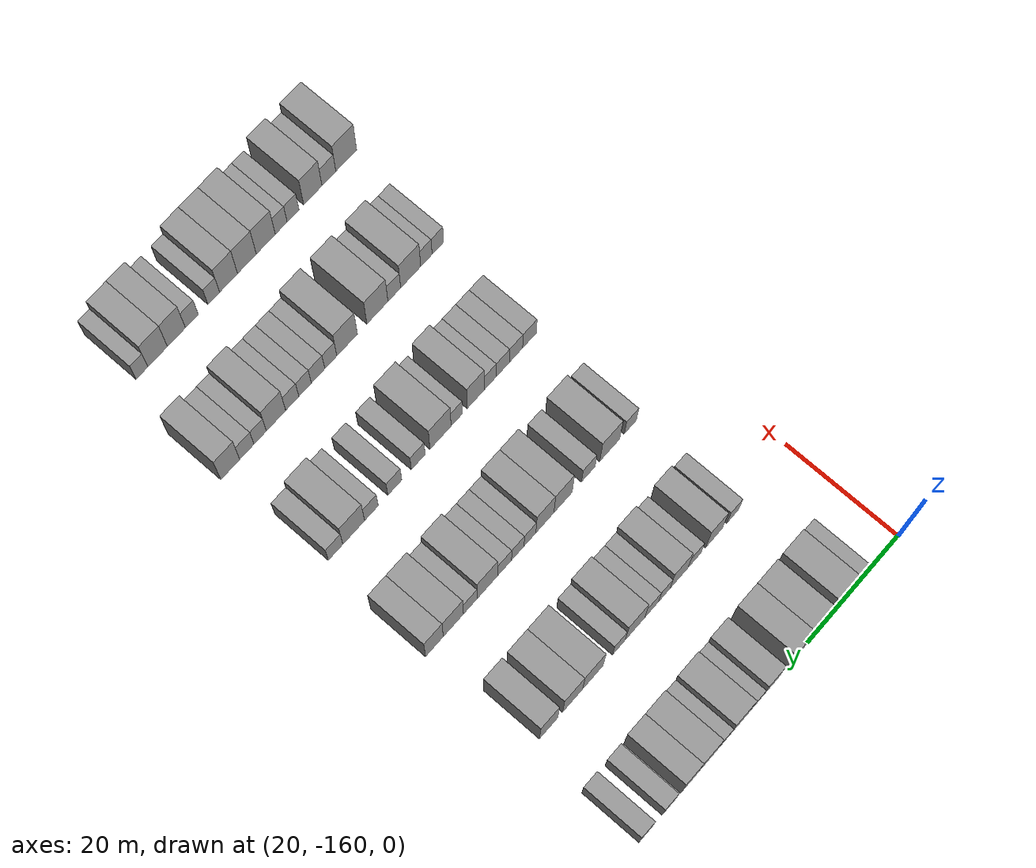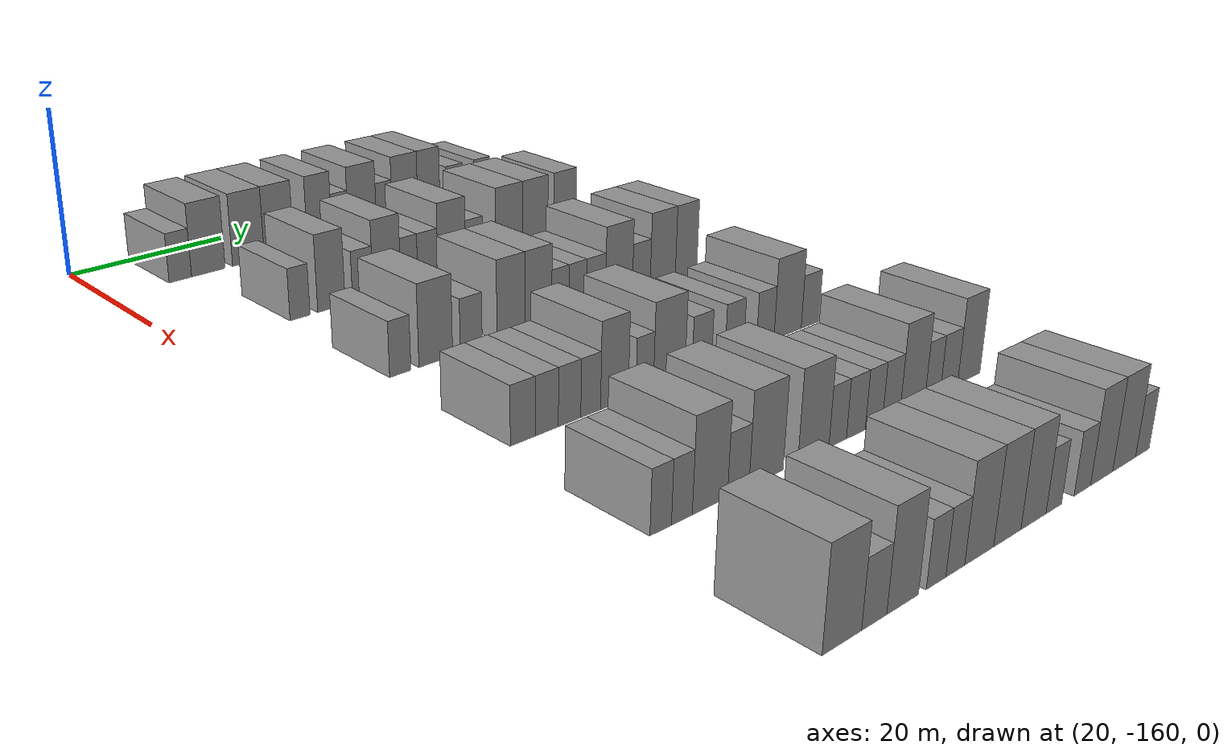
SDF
<sdf version="1.6">
 <world name="default">
  <model name="building_50">
   <static>1</static>
   <pose>25.0000 -151.0705 0 0.000000 0.000000 0.000000</pose>
   <link name="link">
    <pose>0 0 3.00 0 0 0</pose>
    <collision name="collision"><geometry><box><size>10.0000 2.8996 6.0000</size></box></geometry></collision>
    <visual name="visual">
     <cast_shadows>0</cast_shadows>
     <geometry><box><size>10.0000 2.8996 6.0000</size></box></geometry>
     <material>
      <script>
       <uri>model://grey_wall/materials/scripts</uri>
       <uri>model://grey_wall/materials/textures</uri>
       <name>vrc/grey_wall</name>
      </script>
     </material>
    </visual>
   </link>
  </model>
  <model name="building_51">
   <static>1</static>
   <pose>25.0000 -147.3986 0 0.000000 0.000000 0.000000</pose>
   <link name="link">
    <pose>0 0 4.50 0 0 0</pose>
    <collision name="collision"><geometry><box><size>10.0000 4.4442 9.0000</size></box></geometry></collision>
    <visual name="visual">
     <cast_shadows>0</cast_shadows>
     <geometry><box><size>10.0000 4.4442 9.0000</size></box></geometry>
     <material>
      <script>
       <uri>model://grey_wall/materials/scripts</uri>
       <uri>model://grey_wall/materials/textures</uri>
       <name>vrc/grey_wall</name>
      </script>
     </material>
    </visual>
   </link>
  </model>
  <model name="building_52">
   <static>1</static>
   <pose>25.0000 -141.9853 0 0.000000 0.000000 0.000000</pose>
   <link name="link">
    <pose>0 0 4.50 0 0 0</pose>
    <collision name="collision"><geometry><box><size>10.0000 4.3824 9.0000</size></box></geometry></collision>
    <visual name="visual">
     <cast_shadows>0</cast_shadows>
     <geometry><box><size>10.0000 4.3824 9.0000</size></box></geometry>
     <material>
      <script>
       <uri>model://grey_wall/materials/scripts</uri>
       <uri>model://grey_wall/materials/textures</uri>
       <name>vrc/grey_wall</name>
      </script>
     </material>
    </visual>
   </link>
  </model>
  <model name="building_53">
   <static>1</static>
   <pose>25.0000 -137.7094 0 0.000000 0.000000 0.000000</pose>
   <link name="link">
    <pose>0 0 4.50 0 0 0</pose>
    <collision name="collision"><geometry><box><size>10.0000 4.1693 9.0000</size></box></geometry></collision>
    <visual name="visual">
     <cast_shadows>0</cast_shadows>
     <geometry><box><size>10.0000 4.1693 9.0000</size></box></geometry>
     <material>
      <script>
       <uri>model://grey_wall/materials/scripts</uri>
       <uri>model://grey_wall/materials/textures</uri>
       <name>vrc/grey_wall</name>
      </script>
     </material>
    </visual>
   </link>
  </model>
  <model name="building_54">
   <static>1</static>
   <pose>25.0000 -131.8078 0 0.000000 0.000000 0.000000</pose>
   <link name="link">
    <pose>0 0 4.50 0 0 0</pose>
    <collision name="collision"><geometry><box><size>10.0000 3.6338 9.0000</size></box></geometry></collision>
    <visual name="visual">
     <cast_shadows>0</cast_shadows>
     <geometry><box><size>10.0000 3.6338 9.0000</size></box></geometry>
     <material>
      <script>
       <uri>model://grey_wall/materials/scripts</uri>
       <uri>model://grey_wall/materials/textures</uri>
       <name>vrc/grey_wall</name>
      </script>
     </material>
    </visual>
   </link>
  </model>
  <model name="building_55">
   <static>1</static>
   <pose>25.0000 -128.7550 0 0.000000 0.000000 0.000000</pose>
   <link name="link">
    <pose>0 0 3.00 0 0 0</pose>
    <collision name="collision"><geometry><box><size>10.0000 2.4718 6.0000</size></box></geometry></collision>
    <visual name="visual">
     <cast_shadows>0</cast_shadows>
     <geometry><box><size>10.0000 2.4718 6.0000</size></box></geometry>
     <material>
      <script>
       <uri>model://grey_wall/materials/scripts</uri>
       <uri>model://grey_wall/materials/textures</uri>
       <name>vrc/grey_wall</name>
      </script>
     </material>
    </visual>
   </link>
  </model>
  <model name="building_56">
   <static>1</static>
   <pose>25.0000 -125.3522 0 0.000000 0.000000 0.000000</pose>
   <link name="link">
    <pose>0 0 4.50 0 0 0</pose>
    <collision name="collision"><geometry><box><size>10.0000 4.3337 9.0000</size></box></geometry></collision>
    <visual name="visual">
     <cast_shadows>0</cast_shadows>
     <geometry><box><size>10.0000 4.3337 9.0000</size></box></geometry>
     <material>
      <script>
       <uri>model://grey_wall/materials/scripts</uri>
       <uri>model://grey_wall/materials/textures</uri>
       <name>vrc/grey_wall</name>
      </script>
     </material>
    </visual>
   </link>
  </model>
  <model name="building_57">
   <static>1</static>
   <pose>25.0000 -121.9350 0 0.000000 0.000000 0.000000</pose>
   <link name="link">
    <pose>0 0 3.00 0 0 0</pose>
    <collision name="collision"><geometry><box><size>10.0000 2.5006 6.0000</size></box></geometry></collision>
    <visual name="visual">
     <cast_shadows>0</cast_shadows>
     <geometry><box><size>10.0000 2.5006 6.0000</size></box></geometry>
     <material>
      <script>
       <uri>model://grey_wall/materials/scripts</uri>
       <uri>model://grey_wall/materials/textures</uri>
       <name>vrc/grey_wall</name>
      </script>
     </material>
    </visual>
   </link>
  </model>
  <model name="building_58">
   <static>1</static>
   <pose>25.0000 -118.6194 0 0.000000 0.000000 0.000000</pose>
   <link name="link">
    <pose>0 0 4.50 0 0 0</pose>
    <collision name="collision"><geometry><box><size>10.0000 4.1307 9.0000</size></box></geometry></collision>
    <visual name="visual">
     <cast_shadows>0</cast_shadows>
     <geometry><box><size>10.0000 4.1307 9.0000</size></box></geometry>
     <material>
      <script>
       <uri>model://grey_wall/materials/scripts</uri>
       <uri>model://grey_wall/materials/textures</uri>
       <name>vrc/grey_wall</name>
      </script>
     </material>
    </visual>
   </link>
  </model>
  <model name="building_59">
   <static>1</static>
   <pose>25.0000 -114.7316 0 0.000000 0.000000 0.000000</pose>
   <link name="link">
    <pose>0 0 4.50 0 0 0</pose>
    <collision name="collision"><geometry><box><size>10.0000 3.6450 9.0000</size></box></geometry></collision>
    <visual name="visual">
     <cast_shadows>0</cast_shadows>
     <geometry><box><size>10.0000 3.6450 9.0000</size></box></geometry>
     <material>
      <script>
       <uri>model://grey_wall/materials/scripts</uri>
       <uri>model://grey_wall/materials/textures</uri>
       <name>vrc/grey_wall</name>
      </script>
     </material>
    </visual>
   </link>
  </model>
  <model name="building_60">
   <static>1</static>
   <pose>25.0000 -110.4833 0 0.000000 0.000000 0.000000</pose>
   <link name="link">
    <pose>0 0 3.00 0 0 0</pose>
    <collision name="collision"><geometry><box><size>10.0000 2.8515 6.0000</size></box></geometry></collision>
    <visual name="visual">
     <cast_shadows>0</cast_shadows>
     <geometry><box><size>10.0000 2.8515 6.0000</size></box></geometry>
     <material>
      <script>
       <uri>model://grey_wall/materials/scripts</uri>
       <uri>model://grey_wall/materials/textures</uri>
       <name>vrc/grey_wall</name>
      </script>
     </material>
    </visual>
   </link>
  </model>
  <model name="building_61">
   <static>1</static>
   <pose>25.0000 -105.6531 0 0.000000 0.000000 0.000000</pose>
   <link name="link">
    <pose>0 0 3.00 0 0 0</pose>
    <collision name="collision"><geometry><box><size>10.0000 2.8089 6.0000</size></box></geometry></collision>
    <visual name="visual">
     <cast_shadows>0</cast_shadows>
     <geometry><box><size>10.0000 2.8089 6.0000</size></box></geometry>
     <material>
      <script>
       <uri>model://grey_wall/materials/scripts</uri>
       <uri>model://grey_wall/materials/textures</uri>
       <name>vrc/grey_wall</name>
      </script>
     </material>
    </visual>
   </link>
  </model>
  <model name="building_226">
   <static>1</static>
   <pose>44.0000 -146.9667 0 0.000000 0.000000 0.000000</pose>
   <link name="link">
    <pose>0 0 3.00 0 0 0</pose>
    <collision name="collision"><geometry><box><size>10.0000 2.5577 6.0000</size></box></geometry></collision>
    <visual name="visual">
     <cast_shadows>0</cast_shadows>
     <geometry><box><size>10.0000 2.5577 6.0000</size></box></geometry>
     <material>
      <script>
       <uri>model://grey_wall/materials/scripts</uri>
       <uri>model://grey_wall/materials/textures</uri>
       <name>vrc/grey_wall</name>
      </script>
     </material>
    </visual>
   </link>
  </model>
  <model name="building_227">
   <static>1</static>
   <pose>44.0000 -142.8786 0 0.000000 0.000000 0.000000</pose>
   <link name="link">
    <pose>0 0 4.50 0 0 0</pose>
    <collision name="collision"><geometry><box><size>10.0000 3.6185 9.0000</size></box></geometry></collision>
    <visual name="visual">
     <cast_shadows>0</cast_shadows>
     <geometry><box><size>10.0000 3.6185 9.0000</size></box></geometry>
     <material>
      <script>
       <uri>model://grey_wall/materials/scripts</uri>
       <uri>model://grey_wall/materials/textures</uri>
       <name>vrc/grey_wall</name>
      </script>
     </material>
    </visual>
   </link>
  </model>
  <model name="building_228">
   <static>1</static>
   <pose>44.0000 -138.6681 0 0.000000 0.000000 0.000000</pose>
   <link name="link">
    <pose>0 0 3.00 0 0 0</pose>
    <collision name="collision"><geometry><box><size>10.0000 2.8025 6.0000</size></box></geometry></collision>
    <visual name="visual">
     <cast_shadows>0</cast_shadows>
     <geometry><box><size>10.0000 2.8025 6.0000</size></box></geometry>
     <material>
      <script>
       <uri>model://grey_wall/materials/scripts</uri>
       <uri>model://grey_wall/materials/textures</uri>
       <name>vrc/grey_wall</name>
      </script>
     </material>
    </visual>
   </link>
  </model>
  <model name="building_229">
   <static>1</static>
   <pose>44.0000 -135.3295 0 0.000000 0.000000 0.000000</pose>
   <link name="link">
    <pose>0 0 4.50 0 0 0</pose>
    <collision name="collision"><geometry><box><size>10.0000 3.8747 9.0000</size></box></geometry></collision>
    <visual name="visual">
     <cast_shadows>0</cast_shadows>
     <geometry><box><size>10.0000 3.8747 9.0000</size></box></geometry>
     <material>
      <script>
       <uri>model://grey_wall/materials/scripts</uri>
       <uri>model://grey_wall/materials/textures</uri>
       <name>vrc/grey_wall</name>
      </script>
     </material>
    </visual>
   </link>
  </model>
  <model name="building_230">
   <static>1</static>
   <pose>44.0000 -132.1748 0 0.000000 0.000000 0.000000</pose>
   <link name="link">
    <pose>0 0 3.00 0 0 0</pose>
    <collision name="collision"><geometry><box><size>10.0000 2.4348 6.0000</size></box></geometry></collision>
    <visual name="visual">
     <cast_shadows>0</cast_shadows>
     <geometry><box><size>10.0000 2.4348 6.0000</size></box></geometry>
     <material>
      <script>
       <uri>model://grey_wall/materials/scripts</uri>
       <uri>model://grey_wall/materials/textures</uri>
       <name>vrc/grey_wall</name>
      </script>
     </material>
    </visual>
   </link>
  </model>
  <model name="building_231">
   <static>1</static>
   <pose>44.0000 -129.4868 0 0.000000 0.000000 0.000000</pose>
   <link name="link">
    <pose>0 0 3.00 0 0 0</pose>
    <collision name="collision"><geometry><box><size>10.0000 2.9411 6.0000</size></box></geometry></collision>
    <visual name="visual">
     <cast_shadows>0</cast_shadows>
     <geometry><box><size>10.0000 2.9411 6.0000</size></box></geometry>
     <material>
      <script>
       <uri>model://grey_wall/materials/scripts</uri>
       <uri>model://grey_wall/materials/textures</uri>
       <name>vrc/grey_wall</name>
      </script>
     </material>
    </visual>
   </link>
  </model>
  <model name="building_232">
   <static>1</static>
   <pose>44.0000 -125.9477 0 0.000000 0.000000 0.000000</pose>
   <link name="link">
    <pose>0 0 4.50 0 0 0</pose>
    <collision name="collision"><geometry><box><size>10.0000 4.1373 9.0000</size></box></geometry></collision>
    <visual name="visual">
     <cast_shadows>0</cast_shadows>
     <geometry><box><size>10.0000 4.1373 9.0000</size></box></geometry>
     <material>
      <script>
       <uri>model://grey_wall/materials/scripts</uri>
       <uri>model://grey_wall/materials/textures</uri>
       <name>vrc/grey_wall</name>
      </script>
     </material>
    </visual>
   </link>
  </model>
  <model name="building_233">
   <static>1</static>
   <pose>44.0000 -122.5496 0 0.000000 0.000000 0.000000</pose>
   <link name="link">
    <pose>0 0 3.00 0 0 0</pose>
    <collision name="collision"><geometry><box><size>10.0000 2.6588 6.0000</size></box></geometry></collision>
    <visual name="visual">
     <cast_shadows>0</cast_shadows>
     <geometry><box><size>10.0000 2.6588 6.0000</size></box></geometry>
     <material>
      <script>
       <uri>model://grey_wall/materials/scripts</uri>
       <uri>model://grey_wall/materials/textures</uri>
       <name>vrc/grey_wall</name>
      </script>
     </material>
    </visual>
   </link>
  </model>
  <model name="building_234">
   <static>1</static>
   <pose>44.0000 -117.0620 0 0.000000 0.000000 0.000000</pose>
   <link name="link">
    <pose>0 0 4.50 0 0 0</pose>
    <collision name="collision"><geometry><box><size>10.0000 4.3165 9.0000</size></box></geometry></collision>
    <visual name="visual">
     <cast_shadows>0</cast_shadows>
     <geometry><box><size>10.0000 4.3165 9.0000</size></box></geometry>
     <material>
      <script>
       <uri>model://grey_wall/materials/scripts</uri>
       <uri>model://grey_wall/materials/textures</uri>
       <name>vrc/grey_wall</name>
      </script>
     </material>
    </visual>
   </link>
  </model>
  <model name="building_235">
   <static>1</static>
   <pose>44.0000 -112.8462 0 0.000000 0.000000 0.000000</pose>
   <link name="link">
    <pose>0 0 4.50 0 0 0</pose>
    <collision name="collision"><geometry><box><size>10.0000 4.1151 9.0000</size></box></geometry></collision>
    <visual name="visual">
     <cast_shadows>0</cast_shadows>
     <geometry><box><size>10.0000 4.1151 9.0000</size></box></geometry>
     <material>
      <script>
       <uri>model://grey_wall/materials/scripts</uri>
       <uri>model://grey_wall/materials/textures</uri>
       <name>vrc/grey_wall</name>
      </script>
     </material>
    </visual>
   </link>
  </model>
  <model name="building_236">
   <static>1</static>
   <pose>44.0000 -107.8973 0 0.000000 0.000000 0.000000</pose>
   <link name="link">
    <pose>0 0 4.50 0 0 0</pose>
    <collision name="collision"><geometry><box><size>10.0000 3.7828 9.0000</size></box></geometry></collision>
    <visual name="visual">
     <cast_shadows>0</cast_shadows>
     <geometry><box><size>10.0000 3.7828 9.0000</size></box></geometry>
     <material>
      <script>
       <uri>model://grey_wall/materials/scripts</uri>
       <uri>model://grey_wall/materials/textures</uri>
       <name>vrc/grey_wall</name>
      </script>
     </material>
    </visual>
   </link>
  </model>
  <model name="building_402">
   <static>1</static>
   <pose>63.0000 -147.5192 0 0.000000 0.000000 0.000000</pose>
   <link name="link">
    <pose>0 0 3.00 0 0 0</pose>
    <collision name="collision"><geometry><box><size>10.0000 2.6140 6.0000</size></box></geometry></collision>
    <visual name="visual">
     <cast_shadows>0</cast_shadows>
     <geometry><box><size>10.0000 2.6140 6.0000</size></box></geometry>
     <material>
      <script>
       <uri>model://grey_wall/materials/scripts</uri>
       <uri>model://grey_wall/materials/textures</uri>
       <name>vrc/grey_wall</name>
      </script>
     </material>
    </visual>
   </link>
  </model>
  <model name="building_403">
   <static>1</static>
   <pose>63.0000 -143.0560 0 0.000000 0.000000 0.000000</pose>
   <link name="link">
    <pose>0 0 4.50 0 0 0</pose>
    <collision name="collision"><geometry><box><size>10.0000 4.3125 9.0000</size></box></geometry></collision>
    <visual name="visual">
     <cast_shadows>0</cast_shadows>
     <geometry><box><size>10.0000 4.3125 9.0000</size></box></geometry>
     <material>
      <script>
       <uri>model://grey_wall/materials/scripts</uri>
       <uri>model://grey_wall/materials/textures</uri>
       <name>vrc/grey_wall</name>
      </script>
     </material>
    </visual>
   </link>
  </model>
  <model name="building_404">
   <static>1</static>
   <pose>63.0000 -138.4436 0 0.000000 0.000000 0.000000</pose>
   <link name="link">
    <pose>0 0 3.00 0 0 0</pose>
    <collision name="collision"><geometry><box><size>10.0000 2.9123 6.0000</size></box></geometry></collision>
    <visual name="visual">
     <cast_shadows>0</cast_shadows>
     <geometry><box><size>10.0000 2.9123 6.0000</size></box></geometry>
     <material>
      <script>
       <uri>model://grey_wall/materials/scripts</uri>
       <uri>model://grey_wall/materials/textures</uri>
       <name>vrc/grey_wall</name>
      </script>
     </material>
    </visual>
   </link>
  </model>
  <model name="building_405">
   <static>1</static>
   <pose>63.0000 -133.0437 0 0.000000 0.000000 0.000000</pose>
   <link name="link">
    <pose>0 0 4.50 0 0 0</pose>
    <collision name="collision"><geometry><box><size>10.0000 3.8876 9.0000</size></box></geometry></collision>
    <visual name="visual">
     <cast_shadows>0</cast_shadows>
     <geometry><box><size>10.0000 3.8876 9.0000</size></box></geometry>
     <material>
      <script>
       <uri>model://grey_wall/materials/scripts</uri>
       <uri>model://grey_wall/materials/textures</uri>
       <name>vrc/grey_wall</name>
      </script>
     </material>
    </visual>
   </link>
  </model>
  <model name="building_406">
   <static>1</static>
   <pose>63.0000 -129.1832 0 0.000000 0.000000 0.000000</pose>
   <link name="link">
    <pose>0 0 4.50 0 0 0</pose>
    <collision name="collision"><geometry><box><size>10.0000 3.8333 9.0000</size></box></geometry></collision>
    <visual name="visual">
     <cast_shadows>0</cast_shadows>
     <geometry><box><size>10.0000 3.8333 9.0000</size></box></geometry>
     <material>
      <script>
       <uri>model://grey_wall/materials/scripts</uri>
       <uri>model://grey_wall/materials/textures</uri>
       <name>vrc/grey_wall</name>
      </script>
     </material>
    </visual>
   </link>
  </model>
  <model name="building_407">
   <static>1</static>
   <pose>63.0000 -126.0201 0 0.000000 0.000000 0.000000</pose>
   <link name="link">
    <pose>0 0 3.00 0 0 0</pose>
    <collision name="collision"><geometry><box><size>10.0000 2.4930 6.0000</size></box></geometry></collision>
    <visual name="visual">
     <cast_shadows>0</cast_shadows>
     <geometry><box><size>10.0000 2.4930 6.0000</size></box></geometry>
     <material>
      <script>
       <uri>model://grey_wall/materials/scripts</uri>
       <uri>model://grey_wall/materials/textures</uri>
       <name>vrc/grey_wall</name>
      </script>
     </material>
    </visual>
   </link>
  </model>
  <model name="building_408">
   <static>1</static>
   <pose>63.0000 -123.4585 0 0.000000 0.000000 0.000000</pose>
   <link name="link">
    <pose>0 0 3.00 0 0 0</pose>
    <collision name="collision"><geometry><box><size>10.0000 2.6302 6.0000</size></box></geometry></collision>
    <visual name="visual">
     <cast_shadows>0</cast_shadows>
     <geometry><box><size>10.0000 2.6302 6.0000</size></box></geometry>
     <material>
      <script>
       <uri>model://grey_wall/materials/scripts</uri>
       <uri>model://grey_wall/materials/textures</uri>
       <name>vrc/grey_wall</name>
      </script>
     </material>
    </visual>
   </link>
  </model>
  <model name="building_409">
   <static>1</static>
   <pose>63.0000 -120.6780 0 0.000000 0.000000 0.000000</pose>
   <link name="link">
    <pose>0 0 3.00 0 0 0</pose>
    <collision name="collision"><geometry><box><size>10.0000 2.9309 6.0000</size></box></geometry></collision>
    <visual name="visual">
     <cast_shadows>0</cast_shadows>
     <geometry><box><size>10.0000 2.9309 6.0000</size></box></geometry>
     <material>
      <script>
       <uri>model://grey_wall/materials/scripts</uri>
       <uri>model://grey_wall/materials/textures</uri>
       <name>vrc/grey_wall</name>
      </script>
     </material>
    </visual>
   </link>
  </model>
  <model name="building_410">
   <static>1</static>
   <pose>63.0000 -117.1012 0 0.000000 0.000000 0.000000</pose>
   <link name="link">
    <pose>0 0 4.50 0 0 0</pose>
    <collision name="collision"><geometry><box><size>10.0000 4.2227 9.0000</size></box></geometry></collision>
    <visual name="visual">
     <cast_shadows>0</cast_shadows>
     <geometry><box><size>10.0000 4.2227 9.0000</size></box></geometry>
     <material>
      <script>
       <uri>model://grey_wall/materials/scripts</uri>
       <uri>model://grey_wall/materials/textures</uri>
       <name>vrc/grey_wall</name>
      </script>
     </material>
    </visual>
   </link>
  </model>
  <model name="building_411">
   <static>1</static>
   <pose>63.0000 -113.5569 0 0.000000 0.000000 0.000000</pose>
   <link name="link">
    <pose>0 0 3.00 0 0 0</pose>
    <collision name="collision"><geometry><box><size>10.0000 2.8659 6.0000</size></box></geometry></collision>
    <visual name="visual">
     <cast_shadows>0</cast_shadows>
     <geometry><box><size>10.0000 2.8659 6.0000</size></box></geometry>
     <material>
      <script>
       <uri>model://grey_wall/materials/scripts</uri>
       <uri>model://grey_wall/materials/textures</uri>
       <name>vrc/grey_wall</name>
      </script>
     </material>
    </visual>
   </link>
  </model>
  <model name="building_412">
   <static>1</static>
   <pose>63.0000 -110.0433 0 0.000000 0.000000 0.000000</pose>
   <link name="link">
    <pose>0 0 4.50 0 0 0</pose>
    <collision name="collision"><geometry><box><size>10.0000 4.1614 9.0000</size></box></geometry></collision>
    <visual name="visual">
     <cast_shadows>0</cast_shadows>
     <geometry><box><size>10.0000 4.1614 9.0000</size></box></geometry>
     <material>
      <script>
       <uri>model://grey_wall/materials/scripts</uri>
       <uri>model://grey_wall/materials/textures</uri>
       <name>vrc/grey_wall</name>
      </script>
     </material>
    </visual>
   </link>
  </model>
  <model name="building_413">
   <static>1</static>
   <pose>63.0000 -106.1347 0 0.000000 0.000000 0.000000</pose>
   <link name="link">
    <pose>0 0 4.50 0 0 0</pose>
    <collision name="collision"><geometry><box><size>10.0000 3.6558 9.0000</size></box></geometry></collision>
    <visual name="visual">
     <cast_shadows>0</cast_shadows>
     <geometry><box><size>10.0000 3.6558 9.0000</size></box></geometry>
     <material>
      <script>
       <uri>model://grey_wall/materials/scripts</uri>
       <uri>model://grey_wall/materials/textures</uri>
       <name>vrc/grey_wall</name>
      </script>
     </material>
    </visual>
   </link>
  </model>
  <model name="building_576">
   <static>1</static>
   <pose>82.0000 -147.9124 0 0.000000 0.000000 0.000000</pose>
   <link name="link">
    <pose>0 0 3.00 0 0 0</pose>
    <collision name="collision"><geometry><box><size>10.0000 2.9593 6.0000</size></box></geometry></collision>
    <visual name="visual">
     <cast_shadows>0</cast_shadows>
     <geometry><box><size>10.0000 2.9593 6.0000</size></box></geometry>
     <material>
      <script>
       <uri>model://grey_wall/materials/scripts</uri>
       <uri>model://grey_wall/materials/textures</uri>
       <name>vrc/grey_wall</name>
      </script>
     </material>
    </visual>
   </link>
  </model>
  <model name="building_577">
   <static>1</static>
   <pose>82.0000 -145.0148 0 0.000000 0.000000 0.000000</pose>
   <link name="link">
    <pose>0 0 3.00 0 0 0</pose>
    <collision name="collision"><geometry><box><size>10.0000 2.8359 6.0000</size></box></geometry></collision>
    <visual name="visual">
     <cast_shadows>0</cast_shadows>
     <geometry><box><size>10.0000 2.8359 6.0000</size></box></geometry>
     <material>
      <script>
       <uri>model://grey_wall/materials/scripts</uri>
       <uri>model://grey_wall/materials/textures</uri>
       <name>vrc/grey_wall</name>
      </script>
     </material>
    </visual>
   </link>
  </model>
  <model name="building_578">
   <static>1</static>
   <pose>82.0000 -142.1846 0 0.000000 0.000000 0.000000</pose>
   <link name="link">
    <pose>0 0 3.00 0 0 0</pose>
    <collision name="collision"><geometry><box><size>10.0000 2.8244 6.0000</size></box></geometry></collision>
    <visual name="visual">
     <cast_shadows>0</cast_shadows>
     <geometry><box><size>10.0000 2.8244 6.0000</size></box></geometry>
     <material>
      <script>
       <uri>model://grey_wall/materials/scripts</uri>
       <uri>model://grey_wall/materials/textures</uri>
       <name>vrc/grey_wall</name>
      </script>
     </material>
    </visual>
   </link>
  </model>
  <model name="building_579">
   <static>1</static>
   <pose>82.0000 -139.4995 0 0.000000 0.000000 0.000000</pose>
   <link name="link">
    <pose>0 0 3.00 0 0 0</pose>
    <collision name="collision"><geometry><box><size>10.0000 2.5458 6.0000</size></box></geometry></collision>
    <visual name="visual">
     <cast_shadows>0</cast_shadows>
     <geometry><box><size>10.0000 2.5458 6.0000</size></box></geometry>
     <material>
      <script>
       <uri>model://grey_wall/materials/scripts</uri>
       <uri>model://grey_wall/materials/textures</uri>
       <name>vrc/grey_wall</name>
      </script>
     </material>
    </visual>
   </link>
  </model>
  <model name="building_580">
   <static>1</static>
   <pose>82.0000 -136.3912 0 0.000000 0.000000 0.000000</pose>
   <link name="link">
    <pose>0 0 4.50 0 0 0</pose>
    <collision name="collision"><geometry><box><size>10.0000 3.6709 9.0000</size></box></geometry></collision>
    <visual name="visual">
     <cast_shadows>0</cast_shadows>
     <geometry><box><size>10.0000 3.6709 9.0000</size></box></geometry>
     <material>
      <script>
       <uri>model://grey_wall/materials/scripts</uri>
       <uri>model://grey_wall/materials/textures</uri>
       <name>vrc/grey_wall</name>
      </script>
     </material>
    </visual>
   </link>
  </model>
  <model name="building_581">
   <static>1</static>
   <pose>82.0000 -132.3411 0 0.000000 0.000000 0.000000</pose>
   <link name="link">
    <pose>0 0 3.00 0 0 0</pose>
    <collision name="collision"><geometry><box><size>10.0000 2.4294 6.0000</size></box></geometry></collision>
    <visual name="visual">
     <cast_shadows>0</cast_shadows>
     <geometry><box><size>10.0000 2.4294 6.0000</size></box></geometry>
     <material>
      <script>
       <uri>model://grey_wall/materials/scripts</uri>
       <uri>model://grey_wall/materials/textures</uri>
       <name>vrc/grey_wall</name>
      </script>
     </material>
    </visual>
   </link>
  </model>
  <model name="building_582">
   <static>1</static>
   <pose>82.0000 -128.8916 0 0.000000 0.000000 0.000000</pose>
   <link name="link">
    <pose>0 0 4.50 0 0 0</pose>
    <collision name="collision"><geometry><box><size>10.0000 4.4695 9.0000</size></box></geometry></collision>
    <visual name="visual">
     <cast_shadows>0</cast_shadows>
     <geometry><box><size>10.0000 4.4695 9.0000</size></box></geometry>
     <material>
      <script>
       <uri>model://grey_wall/materials/scripts</uri>
       <uri>model://grey_wall/materials/textures</uri>
       <name>vrc/grey_wall</name>
      </script>
     </material>
    </visual>
   </link>
  </model>
  <model name="building_583">
   <static>1</static>
   <pose>82.0000 -124.2024 0 0.000000 0.000000 0.000000</pose>
   <link name="link">
    <pose>0 0 3.00 0 0 0</pose>
    <collision name="collision"><geometry><box><size>10.0000 2.9090 6.0000</size></box></geometry></collision>
    <visual name="visual">
     <cast_shadows>0</cast_shadows>
     <geometry><box><size>10.0000 2.9090 6.0000</size></box></geometry>
     <material>
      <script>
       <uri>model://grey_wall/materials/scripts</uri>
       <uri>model://grey_wall/materials/textures</uri>
       <name>vrc/grey_wall</name>
      </script>
     </material>
    </visual>
   </link>
  </model>
  <model name="building_584">
   <static>1</static>
   <pose>82.0000 -119.3059 0 0.000000 0.000000 0.000000</pose>
   <link name="link">
    <pose>0 0 3.00 0 0 0</pose>
    <collision name="collision"><geometry><box><size>10.0000 2.8840 6.0000</size></box></geometry></collision>
    <visual name="visual">
     <cast_shadows>0</cast_shadows>
     <geometry><box><size>10.0000 2.8840 6.0000</size></box></geometry>
     <material>
      <script>
       <uri>model://grey_wall/materials/scripts</uri>
       <uri>model://grey_wall/materials/textures</uri>
       <name>vrc/grey_wall</name>
      </script>
     </material>
    </visual>
   </link>
  </model>
  <model name="building_585">
   <static>1</static>
   <pose>82.0000 -114.4537 0 0.000000 0.000000 0.000000</pose>
   <link name="link">
    <pose>0 0 3.00 0 0 0</pose>
    <collision name="collision"><geometry><box><size>10.0000 2.8204 6.0000</size></box></geometry></collision>
    <visual name="visual">
     <cast_shadows>0</cast_shadows>
     <geometry><box><size>10.0000 2.8204 6.0000</size></box></geometry>
     <material>
      <script>
       <uri>model://grey_wall/materials/scripts</uri>
       <uri>model://grey_wall/materials/textures</uri>
       <name>vrc/grey_wall</name>
      </script>
     </material>
    </visual>
   </link>
  </model>
  <model name="building_586">
   <static>1</static>
   <pose>82.0000 -110.7980 0 0.000000 0.000000 0.000000</pose>
   <link name="link">
    <pose>0 0 4.50 0 0 0</pose>
    <collision name="collision"><geometry><box><size>10.0000 4.4909 9.0000</size></box></geometry></collision>
    <visual name="visual">
     <cast_shadows>0</cast_shadows>
     <geometry><box><size>10.0000 4.4909 9.0000</size></box></geometry>
     <material>
      <script>
       <uri>model://grey_wall/materials/scripts</uri>
       <uri>model://grey_wall/materials/textures</uri>
       <name>vrc/grey_wall</name>
      </script>
     </material>
    </visual>
   </link>
  </model>
  <model name="building_587">
   <static>1</static>
   <pose>82.0000 -107.0557 0 0.000000 0.000000 0.000000</pose>
   <link name="link">
    <pose>0 0 3.00 0 0 0</pose>
    <collision name="collision"><geometry><box><size>10.0000 2.9937 6.0000</size></box></geometry></collision>
    <visual name="visual">
     <cast_shadows>0</cast_shadows>
     <geometry><box><size>10.0000 2.9937 6.0000</size></box></geometry>
     <material>
      <script>
       <uri>model://grey_wall/materials/scripts</uri>
       <uri>model://grey_wall/materials/textures</uri>
       <name>vrc/grey_wall</name>
      </script>
     </material>
    </visual>
   </link>
  </model>
  <model name="building_742">
   <static>1</static>
   <pose>101.0000 -149.8137 0 0.000000 0.000000 0.000000</pose>
   <link name="link">
    <pose>0 0 3.00 0 0 0</pose>
    <collision name="collision"><geometry><box><size>10.0000 2.4729 6.0000</size></box></geometry></collision>
    <visual name="visual">
     <cast_shadows>0</cast_shadows>
     <geometry><box><size>10.0000 2.4729 6.0000</size></box></geometry>
     <material>
      <script>
       <uri>model://grey_wall/materials/scripts</uri>
       <uri>model://grey_wall/materials/textures</uri>
       <name>vrc/grey_wall</name>
      </script>
     </material>
    </visual>
   </link>
  </model>
  <model name="building_743">
   <static>1</static>
   <pose>101.0000 -147.3478 0 0.000000 0.000000 0.000000</pose>
   <link name="link">
    <pose>0 0 3.00 0 0 0</pose>
    <collision name="collision"><geometry><box><size>10.0000 2.4589 6.0000</size></box></geometry></collision>
    <visual name="visual">
     <cast_shadows>0</cast_shadows>
     <geometry><box><size>10.0000 2.4589 6.0000</size></box></geometry>
     <material>
      <script>
       <uri>model://grey_wall/materials/scripts</uri>
       <uri>model://grey_wall/materials/textures</uri>
       <name>vrc/grey_wall</name>
      </script>
     </material>
    </visual>
   </link>
  </model>
  <model name="building_744">
   <static>1</static>
   <pose>101.0000 -143.9737 0 0.000000 0.000000 0.000000</pose>
   <link name="link">
    <pose>0 0 4.50 0 0 0</pose>
    <collision name="collision"><geometry><box><size>10.0000 4.2894 9.0000</size></box></geometry></collision>
    <visual name="visual">
     <cast_shadows>0</cast_shadows>
     <geometry><box><size>10.0000 4.2894 9.0000</size></box></geometry>
     <material>
      <script>
       <uri>model://grey_wall/materials/scripts</uri>
       <uri>model://grey_wall/materials/textures</uri>
       <name>vrc/grey_wall</name>
      </script>
     </material>
    </visual>
   </link>
  </model>
  <model name="building_745">
   <static>1</static>
   <pose>101.0000 -140.4650 0 0.000000 0.000000 0.000000</pose>
   <link name="link">
    <pose>0 0 3.00 0 0 0</pose>
    <collision name="collision"><geometry><box><size>10.0000 2.7279 6.0000</size></box></geometry></collision>
    <visual name="visual">
     <cast_shadows>0</cast_shadows>
     <geometry><box><size>10.0000 2.7279 6.0000</size></box></geometry>
     <material>
      <script>
       <uri>model://grey_wall/materials/scripts</uri>
       <uri>model://grey_wall/materials/textures</uri>
       <name>vrc/grey_wall</name>
      </script>
     </material>
    </visual>
   </link>
  </model>
  <model name="building_746">
   <static>1</static>
   <pose>101.0000 -136.8620 0 0.000000 0.000000 0.000000</pose>
   <link name="link">
    <pose>0 0 4.50 0 0 0</pose>
    <collision name="collision"><geometry><box><size>10.0000 4.4781 9.0000</size></box></geometry></collision>
    <visual name="visual">
     <cast_shadows>0</cast_shadows>
     <geometry><box><size>10.0000 4.4781 9.0000</size></box></geometry>
     <material>
      <script>
       <uri>model://grey_wall/materials/scripts</uri>
       <uri>model://grey_wall/materials/textures</uri>
       <name>vrc/grey_wall</name>
      </script>
     </material>
    </visual>
   </link>
  </model>
  <model name="building_747">
   <static>1</static>
   <pose>101.0000 -130.4529 0 0.000000 0.000000 0.000000</pose>
   <link name="link">
    <pose>0 0 4.50 0 0 0</pose>
    <collision name="collision"><geometry><box><size>10.0000 4.3402 9.0000</size></box></geometry></collision>
    <visual name="visual">
     <cast_shadows>0</cast_shadows>
     <geometry><box><size>10.0000 4.3402 9.0000</size></box></geometry>
     <material>
      <script>
       <uri>model://grey_wall/materials/scripts</uri>
       <uri>model://grey_wall/materials/textures</uri>
       <name>vrc/grey_wall</name>
      </script>
     </material>
    </visual>
   </link>
  </model>
  <model name="building_748">
   <static>1</static>
   <pose>101.0000 -127.0179 0 0.000000 0.000000 0.000000</pose>
   <link name="link">
    <pose>0 0 3.00 0 0 0</pose>
    <collision name="collision"><geometry><box><size>10.0000 2.5299 6.0000</size></box></geometry></collision>
    <visual name="visual">
     <cast_shadows>0</cast_shadows>
     <geometry><box><size>10.0000 2.5299 6.0000</size></box></geometry>
     <material>
      <script>
       <uri>model://grey_wall/materials/scripts</uri>
       <uri>model://grey_wall/materials/textures</uri>
       <name>vrc/grey_wall</name>
      </script>
     </material>
    </visual>
   </link>
  </model>
  <model name="building_749">
   <static>1</static>
   <pose>101.0000 -124.3508 0 0.000000 0.000000 0.000000</pose>
   <link name="link">
    <pose>0 0 3.00 0 0 0</pose>
    <collision name="collision"><geometry><box><size>10.0000 2.8043 6.0000</size></box></geometry></collision>
    <visual name="visual">
     <cast_shadows>0</cast_shadows>
     <geometry><box><size>10.0000 2.8043 6.0000</size></box></geometry>
     <material>
      <script>
       <uri>model://grey_wall/materials/scripts</uri>
       <uri>model://grey_wall/materials/textures</uri>
       <name>vrc/grey_wall</name>
      </script>
     </material>
    </visual>
   </link>
  </model>
  <model name="building_750">
   <static>1</static>
   <pose>101.0000 -121.6426 0 0.000000 0.000000 0.000000</pose>
   <link name="link">
    <pose>0 0 3.00 0 0 0</pose>
    <collision name="collision"><geometry><box><size>10.0000 2.6121 6.0000</size></box></geometry></collision>
    <visual name="visual">
     <cast_shadows>0</cast_shadows>
     <geometry><box><size>10.0000 2.6121 6.0000</size></box></geometry>
     <material>
      <script>
       <uri>model://grey_wall/materials/scripts</uri>
       <uri>model://grey_wall/materials/textures</uri>
       <name>vrc/grey_wall</name>
      </script>
     </material>
    </visual>
   </link>
  </model>
  <model name="building_751">
   <static>1</static>
   <pose>101.0000 -118.9655 0 0.000000 0.000000 0.000000</pose>
   <link name="link">
    <pose>0 0 3.00 0 0 0</pose>
    <collision name="collision"><geometry><box><size>10.0000 2.7422 6.0000</size></box></geometry></collision>
    <visual name="visual">
     <cast_shadows>0</cast_shadows>
     <geometry><box><size>10.0000 2.7422 6.0000</size></box></geometry>
     <material>
      <script>
       <uri>model://grey_wall/materials/scripts</uri>
       <uri>model://grey_wall/materials/textures</uri>
       <name>vrc/grey_wall</name>
      </script>
     </material>
    </visual>
   </link>
  </model>
  <model name="building_752">
   <static>1</static>
   <pose>101.0000 -115.5954 0 0.000000 0.000000 0.000000</pose>
   <link name="link">
    <pose>0 0 4.50 0 0 0</pose>
    <collision name="collision"><geometry><box><size>10.0000 3.9979 9.0000</size></box></geometry></collision>
    <visual name="visual">
     <cast_shadows>0</cast_shadows>
     <geometry><box><size>10.0000 3.9979 9.0000</size></box></geometry>
     <material>
      <script>
       <uri>model://grey_wall/materials/scripts</uri>
       <uri>model://grey_wall/materials/textures</uri>
       <name>vrc/grey_wall</name>
      </script>
     </material>
    </visual>
   </link>
  </model>
  <model name="building_753">
   <static>1</static>
   <pose>101.0000 -112.3209 0 0.000000 0.000000 0.000000</pose>
   <link name="link">
    <pose>0 0 3.00 0 0 0</pose>
    <collision name="collision"><geometry><box><size>10.0000 2.5512 6.0000</size></box></geometry></collision>
    <visual name="visual">
     <cast_shadows>0</cast_shadows>
     <geometry><box><size>10.0000 2.5512 6.0000</size></box></geometry>
     <material>
      <script>
       <uri>model://grey_wall/materials/scripts</uri>
       <uri>model://grey_wall/materials/textures</uri>
       <name>vrc/grey_wall</name>
      </script>
     </material>
    </visual>
   </link>
  </model>
  <model name="building_754">
   <static>1</static>
   <pose>101.0000 -109.5812 0 0.000000 0.000000 0.000000</pose>
   <link name="link">
    <pose>0 0 3.00 0 0 0</pose>
    <collision name="collision"><geometry><box><size>10.0000 2.9281 6.0000</size></box></geometry></collision>
    <visual name="visual">
     <cast_shadows>0</cast_shadows>
     <geometry><box><size>10.0000 2.9281 6.0000</size></box></geometry>
     <material>
      <script>
       <uri>model://grey_wall/materials/scripts</uri>
       <uri>model://grey_wall/materials/textures</uri>
       <name>vrc/grey_wall</name>
      </script>
     </material>
    </visual>
   </link>
  </model>
  <model name="building_755">
   <static>1</static>
   <pose>101.0000 -106.1786 0 0.000000 0.000000 0.000000</pose>
   <link name="link">
    <pose>0 0 4.50 0 0 0</pose>
    <collision name="collision"><geometry><box><size>10.0000 3.8772 9.0000</size></box></geometry></collision>
    <visual name="visual">
     <cast_shadows>0</cast_shadows>
     <geometry><box><size>10.0000 3.8772 9.0000</size></box></geometry>
     <material>
      <script>
       <uri>model://grey_wall/materials/scripts</uri>
       <uri>model://grey_wall/materials/textures</uri>
       <name>vrc/grey_wall</name>
      </script>
     </material>
    </visual>
   </link>
  </model>
  <model name="building_924">
   <static>1</static>
   <pose>120.0000 -151.2682 0 0.000000 0.000000 0.000000</pose>
   <link name="link">
    <pose>0 0 4.50 0 0 0</pose>
    <collision name="collision"><geometry><box><size>10.0000 4.4869 9.0000</size></box></geometry></collision>
    <visual name="visual">
     <cast_shadows>0</cast_shadows>
     <geometry><box><size>10.0000 4.4869 9.0000</size></box></geometry>
     <material>
      <script>
       <uri>model://grey_wall/materials/scripts</uri>
       <uri>model://grey_wall/materials/textures</uri>
       <name>vrc/grey_wall</name>
      </script>
     </material>
    </visual>
   </link>
  </model>
  <model name="building_925">
   <static>1</static>
   <pose>120.0000 -147.5315 0 0.000000 0.000000 0.000000</pose>
   <link name="link">
    <pose>0 0 3.00 0 0 0</pose>
    <collision name="collision"><geometry><box><size>10.0000 2.9864 6.0000</size></box></geometry></collision>
    <visual name="visual">
     <cast_shadows>0</cast_shadows>
     <geometry><box><size>10.0000 2.9864 6.0000</size></box></geometry>
     <material>
      <script>
       <uri>model://grey_wall/materials/scripts</uri>
       <uri>model://grey_wall/materials/textures</uri>
       <name>vrc/grey_wall</name>
      </script>
     </material>
    </visual>
   </link>
  </model>
  <model name="building_926">
   <static>1</static>
   <pose>120.0000 -144.0803 0 0.000000 0.000000 0.000000</pose>
   <link name="link">
    <pose>0 0 4.50 0 0 0</pose>
    <collision name="collision"><geometry><box><size>10.0000 3.9162 9.0000</size></box></geometry></collision>
    <visual name="visual">
     <cast_shadows>0</cast_shadows>
     <geometry><box><size>10.0000 3.9162 9.0000</size></box></geometry>
     <material>
      <script>
       <uri>model://grey_wall/materials/scripts</uri>
       <uri>model://grey_wall/materials/textures</uri>
       <name>vrc/grey_wall</name>
      </script>
     </material>
    </visual>
   </link>
  </model>
  <model name="building_927">
   <static>1</static>
   <pose>120.0000 -139.8616 0 0.000000 0.000000 0.000000</pose>
   <link name="link">
    <pose>0 0 3.00 0 0 0</pose>
    <collision name="collision"><geometry><box><size>10.0000 2.5211 6.0000</size></box></geometry></collision>
    <visual name="visual">
     <cast_shadows>0</cast_shadows>
     <geometry><box><size>10.0000 2.5211 6.0000</size></box></geometry>
     <material>
      <script>
       <uri>model://grey_wall/materials/scripts</uri>
       <uri>model://grey_wall/materials/textures</uri>
       <name>vrc/grey_wall</name>
      </script>
     </material>
    </visual>
   </link>
  </model>
  <model name="building_928">
   <static>1</static>
   <pose>120.0000 -137.3408 0 0.000000 0.000000 0.000000</pose>
   <link name="link">
    <pose>0 0 3.00 0 0 0</pose>
    <collision name="collision"><geometry><box><size>10.0000 2.5206 6.0000</size></box></geometry></collision>
    <visual name="visual">
     <cast_shadows>0</cast_shadows>
     <geometry><box><size>10.0000 2.5206 6.0000</size></box></geometry>
     <material>
      <script>
       <uri>model://grey_wall/materials/scripts</uri>
       <uri>model://grey_wall/materials/textures</uri>
       <name>vrc/grey_wall</name>
      </script>
     </material>
    </visual>
   </link>
  </model>
  <model name="building_929">
   <static>1</static>
   <pose>120.0000 -134.0776 0 0.000000 0.000000 0.000000</pose>
   <link name="link">
    <pose>0 0 4.50 0 0 0</pose>
    <collision name="collision"><geometry><box><size>10.0000 4.0058 9.0000</size></box></geometry></collision>
    <visual name="visual">
     <cast_shadows>0</cast_shadows>
     <geometry><box><size>10.0000 4.0058 9.0000</size></box></geometry>
     <material>
      <script>
       <uri>model://grey_wall/materials/scripts</uri>
       <uri>model://grey_wall/materials/textures</uri>
       <name>vrc/grey_wall</name>
      </script>
     </material>
    </visual>
   </link>
  </model>
  <model name="building_930">
   <static>1</static>
   <pose>120.0000 -130.1010 0 0.000000 0.000000 0.000000</pose>
   <link name="link">
    <pose>0 0 4.50 0 0 0</pose>
    <collision name="collision"><geometry><box><size>10.0000 3.9474 9.0000</size></box></geometry></collision>
    <visual name="visual">
     <cast_shadows>0</cast_shadows>
     <geometry><box><size>10.0000 3.9474 9.0000</size></box></geometry>
     <material>
      <script>
       <uri>model://grey_wall/materials/scripts</uri>
       <uri>model://grey_wall/materials/textures</uri>
       <name>vrc/grey_wall</name>
      </script>
     </material>
    </visual>
   </link>
  </model>
  <model name="building_931">
   <static>1</static>
   <pose>120.0000 -126.2424 0 0.000000 0.000000 0.000000</pose>
   <link name="link">
    <pose>0 0 4.50 0 0 0</pose>
    <collision name="collision"><geometry><box><size>10.0000 3.7697 9.0000</size></box></geometry></collision>
    <visual name="visual">
     <cast_shadows>0</cast_shadows>
     <geometry><box><size>10.0000 3.7697 9.0000</size></box></geometry>
     <material>
      <script>
       <uri>model://grey_wall/materials/scripts</uri>
       <uri>model://grey_wall/materials/textures</uri>
       <name>vrc/grey_wall</name>
      </script>
     </material>
    </visual>
   </link>
  </model>
  <model name="building_932">
   <static>1</static>
   <pose>120.0000 -123.1445 0 0.000000 0.000000 0.000000</pose>
   <link name="link">
    <pose>0 0 3.00 0 0 0</pose>
    <collision name="collision"><geometry><box><size>10.0000 2.4261 6.0000</size></box></geometry></collision>
    <visual name="visual">
     <cast_shadows>0</cast_shadows>
     <geometry><box><size>10.0000 2.4261 6.0000</size></box></geometry>
     <material>
      <script>
       <uri>model://grey_wall/materials/scripts</uri>
       <uri>model://grey_wall/materials/textures</uri>
       <name>vrc/grey_wall</name>
      </script>
     </material>
    </visual>
   </link>
  </model>
  <model name="building_933">
   <static>1</static>
   <pose>120.0000 -118.5952 0 0.000000 0.000000 0.000000</pose>
   <link name="link">
    <pose>0 0 3.00 0 0 0</pose>
    <collision name="collision"><geometry><box><size>10.0000 2.6726 6.0000</size></box></geometry></collision>
    <visual name="visual">
     <cast_shadows>0</cast_shadows>
     <geometry><box><size>10.0000 2.6726 6.0000</size></box></geometry>
     <material>
      <script>
       <uri>model://grey_wall/materials/scripts</uri>
       <uri>model://grey_wall/materials/textures</uri>
       <name>vrc/grey_wall</name>
      </script>
     </material>
    </visual>
   </link>
  </model>
  <model name="building_934">
   <static>1</static>
   <pose>120.0000 -115.4019 0 0.000000 0.000000 0.000000</pose>
   <link name="link">
    <pose>0 0 4.50 0 0 0</pose>
    <collision name="collision"><geometry><box><size>10.0000 3.7139 9.0000</size></box></geometry></collision>
    <visual name="visual">
     <cast_shadows>0</cast_shadows>
     <geometry><box><size>10.0000 3.7139 9.0000</size></box></geometry>
     <material>
      <script>
       <uri>model://grey_wall/materials/scripts</uri>
       <uri>model://grey_wall/materials/textures</uri>
       <name>vrc/grey_wall</name>
      </script>
     </material>
    </visual>
   </link>
  </model>
  <model name="building_935">
   <static>1</static>
   <pose>120.0000 -111.5367 0 0.000000 0.000000 0.000000</pose>
   <link name="link">
    <pose>0 0 4.50 0 0 0</pose>
    <collision name="collision"><geometry><box><size>10.0000 4.0166 9.0000</size></box></geometry></collision>
    <visual name="visual">
     <cast_shadows>0</cast_shadows>
     <geometry><box><size>10.0000 4.0166 9.0000</size></box></geometry>
     <material>
      <script>
       <uri>model://grey_wall/materials/scripts</uri>
       <uri>model://grey_wall/materials/textures</uri>
       <name>vrc/grey_wall</name>
      </script>
     </material>
    </visual>
   </link>
  </model>
  <model name="building_936">
   <static>1</static>
   <pose>120.0000 -108.3130 0 0.000000 0.000000 0.000000</pose>
   <link name="link">
    <pose>0 0 3.00 0 0 0</pose>
    <collision name="collision"><geometry><box><size>10.0000 2.4307 6.0000</size></box></geometry></collision>
    <visual name="visual">
     <cast_shadows>0</cast_shadows>
     <geometry><box><size>10.0000 2.4307 6.0000</size></box></geometry>
     <material>
      <script>
       <uri>model://grey_wall/materials/scripts</uri>
       <uri>model://grey_wall/materials/textures</uri>
       <name>vrc/grey_wall</name>
      </script>
     </material>
    </visual>
   </link>
  </model>
 </world>
</sdf>
